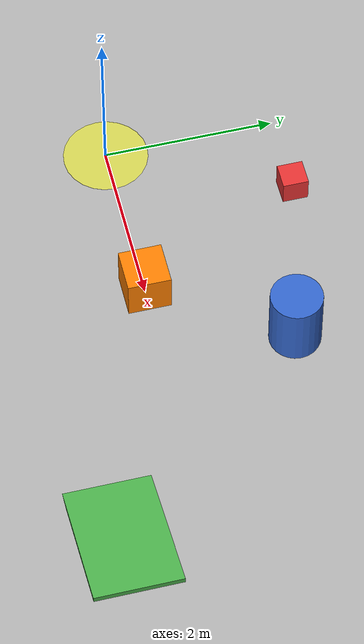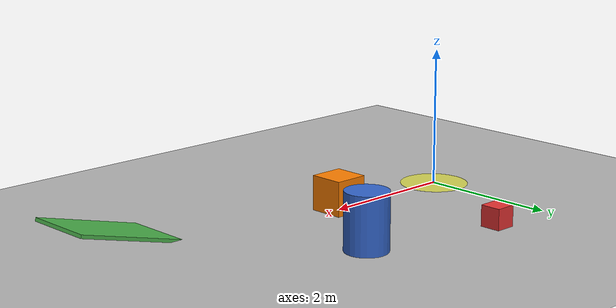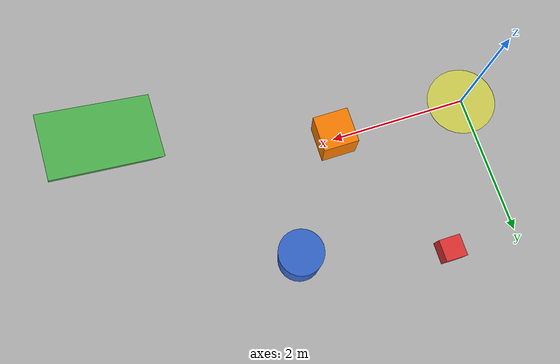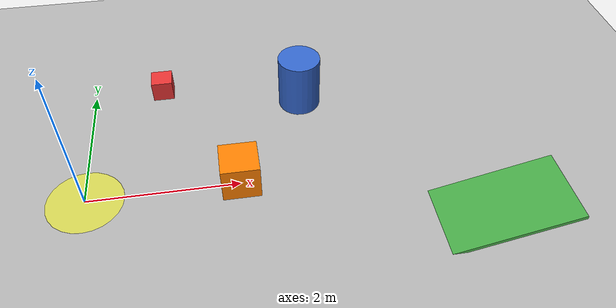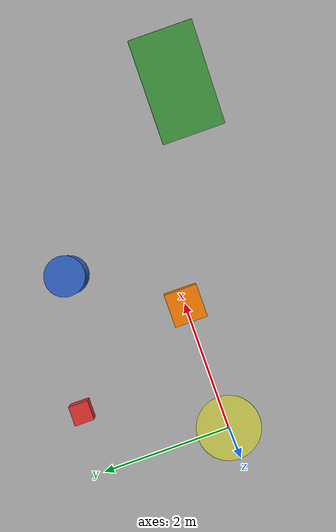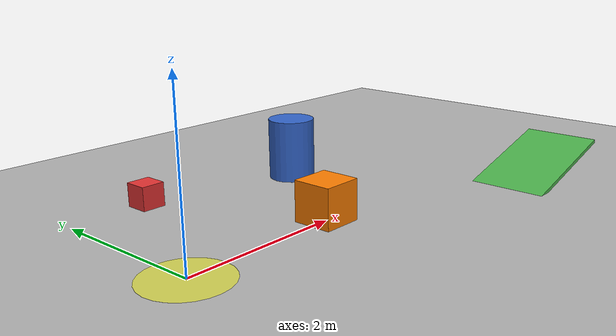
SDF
<?xml version="1.0" ?>
<sdf version="1.9">
  <world name="robot_arena">

    <physics name="default_physics" type="dart">
      <max_step_size>0.001</max_step_size>

      <real_time_factor>1.0</real_time_factor>

      <real_time_update_rate>1000</real_time_update_rate>

      <!--
        DART-specific solver configuration
        Adjusts constraint solving for joint limits and contacts
      -->
      <dart>
        <solver>
          <!--
            solver_type options:
            - dantzig: Fast, good for most cases (default)
            - pgs: Projected Gauss-Seidel, more stable for high friction
          -->
          <solver_type>dantzig</solver_type>
        </solver>
        <collision_detector>bullet</collision_detector>
      </dart>
    </physics>

    <gravity>0 0 -9.81</gravity>

    <magnetic_field>5.5645e-6 22.8758e-6 -42.3884e-6</magnetic_field>

    <atmosphere type="adiabatic"/>

    <scene>
      <!-- Ambient light color (fills shadows) -->
      <ambient>0.4 0.4 0.4 1</ambient>
      <!-- Background color (sky) -->
      <background>0.7 0.85 1.0 1</background>
      <!-- Enable shadows from directional lights -->
      <shadows>true</shadows>
    </scene>

    <!-- Primary directional light (simulates sun) -->
    <light name="sun" type="directional">
      <!-- Light direction vector (pointing from sky toward ground) -->
      <direction>-0.5 0.5 -0.9</direction>
      <!-- Cast shadows from this light source -->
      <cast_shadows>true</cast_shadows>
      <!-- Light color and intensity (diffuse = direct light) -->
      <diffuse>0.8 0.8 0.8 1</diffuse>
      <!-- Specular highlights (shininess on surfaces) -->
      <specular>0.2 0.2 0.2 1</specular>
      <!-- Attenuation (how light fades with distance) -->
      <attenuation>
        <range>1000</range>
        <constant>0.9</constant>
        <linear>0.01</linear>
        <quadratic>0.001</quadratic>
      </attenuation>
    </light>

    <model name="ground_plane">
      <!-- Static models don't move under forces (infinite mass) -->
      <static>true</static>

      <link name="ground_link">
        <!-- Collision geometry: What physics engine uses for contacts -->
        <collision name="ground_collision">
          <geometry>
            <!-- Infinite plane defined by normal vector (Z-up) -->
            <plane>
              <normal>0 0 1</normal>
              <size>100 100</size>
            </plane>
          </geometry>

          <!--
            Surface properties: Critical for realistic robot interaction
            These values significantly affect walking, grasping, and pushing
          -->
          <surface>
            <friction>
              <ode>
                <mu>0.8</mu>
                <!-- mu2: Secondary friction (perpendicular direction) -->
                <mu2>0.8</mu2>
                <!-- fdir1: Friction direction (usually leave default) -->
                <fdir1>0 0 0</fdir1>
              </ode>
              <torsional>
                <!-- Coefficient for rotational friction (prevents spinning) -->
                <coefficient>0.5</coefficient>
                <surface_radius>0.05</surface_radius>
              </torsional>
            </friction>
            <contact>
              <ode>
                <!-- kp: Contact stiffness (higher = harder surface) -->
                <kp>1e6</kp>
                <!-- kd: Contact damping (prevents bouncing) -->
                <kd>100</kd>
                <!-- max_vel: Maximum corrective velocity for penetration -->
                <max_vel>100</max_vel>
                <!-- min_depth: Penetration depth before contact activates -->
                <min_depth>0.001</min_depth>
              </ode>
            </contact>
          </surface>
        </collision>

        <!-- Visual geometry: What rendering shows (can differ from collision) -->
        <visual name="ground_visual">
          <geometry>
            <plane>
              <normal>0 0 1</normal>
              <size>100 100</size>
            </plane>
          </geometry>
          <material>
            <!-- Gray concrete-like appearance -->
            <ambient>0.3 0.3 0.3 1</ambient>
            <diffuse>0.7 0.7 0.7 1</diffuse>
            <specular>0.1 0.1 0.1 1</specular>
          </material>
        </visual>
      </link>
    </model>

    <model name="obstacle_box">
      <static>true</static>
      <!-- Position in world frame: X=2m forward, Y=0, Z=0.25m (half-height) -->
      <pose>2 0 0.25 0 0 0</pose>

      <link name="box_link">
        <collision name="box_collision">
          <geometry>
            <box>
              <!-- Dimensions: 0.5m × 0.5m × 0.5m cube -->
              <size>0.5 0.5 0.5</size>
            </box>
          </geometry>
          <surface>
            <friction>
              <ode>
                <mu>0.6</mu>
                <mu2>0.6</mu2>
              </ode>
            </friction>
          </surface>
        </collision>

        <visual name="box_visual">
          <geometry>
            <box>
              <size>0.5 0.5 0.5</size>
            </box>
          </geometry>
          <material>
            <!-- Orange color for visibility -->
            <ambient>0.8 0.4 0.1 1</ambient>
            <diffuse>1.0 0.5 0.0 1</diffuse>
          </material>
        </visual>
      </link>
    </model>

    <model name="obstacle_cylinder">
      <static>true</static>
      <pose>3 1.5 0.4 0 0 0</pose>

      <link name="cylinder_link">
        <collision name="cylinder_collision">
          <geometry>
            <cylinder>
              <radius>0.3</radius>
              <length>0.8</length>
            </cylinder>
          </geometry>
        </collision>

        <visual name="cylinder_visual">
          <geometry>
            <cylinder>
              <radius>0.3</radius>
              <length>0.8</length>
            </cylinder>
          </geometry>
          <material>
            <!-- Blue color -->
            <ambient>0.1 0.2 0.6 1</ambient>
            <diffuse>0.2 0.4 0.8 1</diffuse>
          </material>
        </visual>
      </link>
    </model>

    <model name="ramp">
      <static>true</static>
      <!--
        Pose: X Y Z Roll Pitch Yaw
        Pitch of 0.26 radians ≈ 15 degrees
        Position calculated to place ramp bottom at Z=0
      -->
      <pose>5 -1 0.13 0 -0.26 0</pose>

      <link name="ramp_link">
        <collision name="ramp_collision">
          <geometry>
            <box>
              <!-- Thin, wide ramp: 2m long, 1m wide, 0.05m thick -->
              <size>2.0 1.0 0.05</size>
            </box>
          </geometry>
          <surface>
            <friction>
              <ode>
                <!-- Higher friction for ramp traversal -->
                <mu>0.9</mu>
                <mu2>0.9</mu2>
              </ode>
            </friction>
          </surface>
        </collision>

        <visual name="ramp_visual">
          <geometry>
            <box>
              <size>2.0 1.0 0.05</size>
            </box>
          </geometry>
          <material>
            <!-- Green color -->
            <ambient>0.2 0.5 0.2 1</ambient>
            <diffuse>0.3 0.7 0.3 1</diffuse>
          </material>
        </visual>
      </link>
    </model>

    <model name="pushable_box">
      <!-- Not static: can move under forces -->
      <pose>1 2 0.15 0 0 0</pose>

      <link name="pushable_link">
        <!-- Inertial properties: Required for dynamic objects -->
        <inertial>
          <!-- Mass in kg -->
          <mass>5.0</mass>
          <!--
            Inertia tensor for a uniform box:
            I = (1/12) × m × (h² + d²) for each axis
            For 0.3m cube with 5kg mass: ~0.0375 kg·m²
          -->
          <inertia>
            <ixx>0.0375</ixx>
            <ixy>0</ixy>
            <ixz>0</ixz>
            <iyy>0.0375</iyy>
            <iyz>0</iyz>
            <izz>0.0375</izz>
          </inertia>
        </inertial>

        <collision name="pushable_collision">
          <geometry>
            <box>
              <size>0.3 0.3 0.3</size>
            </box>
          </geometry>
          <surface>
            <friction>
              <ode>
                <mu>0.5</mu>
                <mu2>0.5</mu2>
              </ode>
            </friction>
          </surface>
        </collision>

        <visual name="pushable_visual">
          <geometry>
            <box>
              <size>0.3 0.3 0.3</size>
            </box>
          </geometry>
          <material>
            <!-- Red color to indicate dynamic object -->
            <ambient>0.6 0.1 0.1 1</ambient>
            <diffuse>0.9 0.2 0.2 1</diffuse>
          </material>
        </visual>
      </link>
    </model>

    <model name="spawn_marker">
      <static>true</static>
      <pose>0 0 0.001 0 0 0</pose>

      <link name="marker_link">
        <!-- No collision: robots can spawn here without interference -->
        <visual name="marker_visual">
          <geometry>
            <cylinder>
              <radius>0.5</radius>
              <length>0.002</length>
            </cylinder>
          </geometry>
          <material>
            <!-- Semi-transparent yellow circle -->
            <ambient>0.8 0.8 0.0 0.5</ambient>
            <diffuse>1.0 1.0 0.0 0.5</diffuse>
          </material>
        </visual>
      </link>
    </model>

    <!-- Physics system: Required for physics simulation -->
    <plugin filename="gz-sim-physics-system" name="gz::sim::systems::Physics">
    </plugin>

    <!-- User commands: Allows spawning/deleting models at runtime -->
    <plugin filename="gz-sim-user-commands-system" name="gz::sim::systems::UserCommands">
    </plugin>

    <!-- Scene broadcaster: Publishes scene state for visualization -->
    <plugin filename="gz-sim-scene-broadcaster-system" name="gz::sim::systems::SceneBroadcaster">
    </plugin>

    <!-- Sensors: Required for any sensor plugins (LiDAR, camera, IMU) -->
    <plugin filename="gz-sim-sensors-system" name="gz::sim::systems::Sensors">
      <render_engine>ogre2</render_engine>
    </plugin>

    <!-- IMU: Required for IMU sensor functionality -->
    <plugin filename="gz-sim-imu-system" name="gz::sim::systems::Imu">
    </plugin>

    <!-- Contact: Required for contact force sensing -->
    <plugin filename="gz-sim-contact-system" name="gz::sim::systems::Contact">
    </plugin>

  </world>
</sdf>
